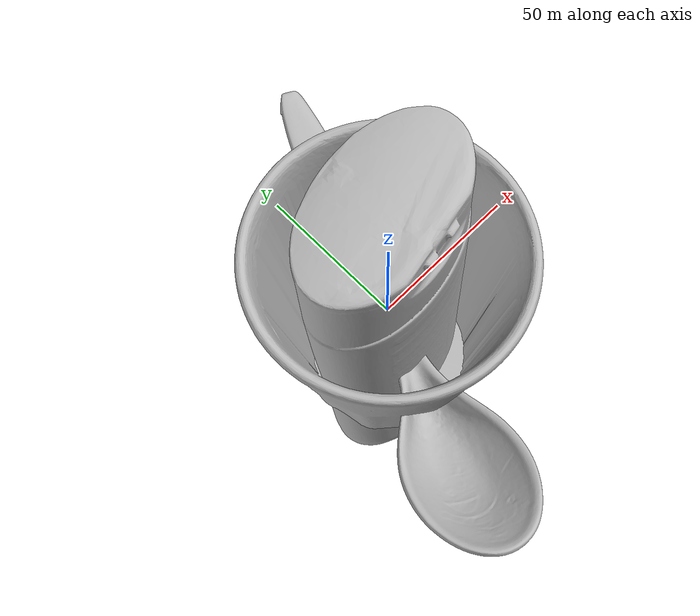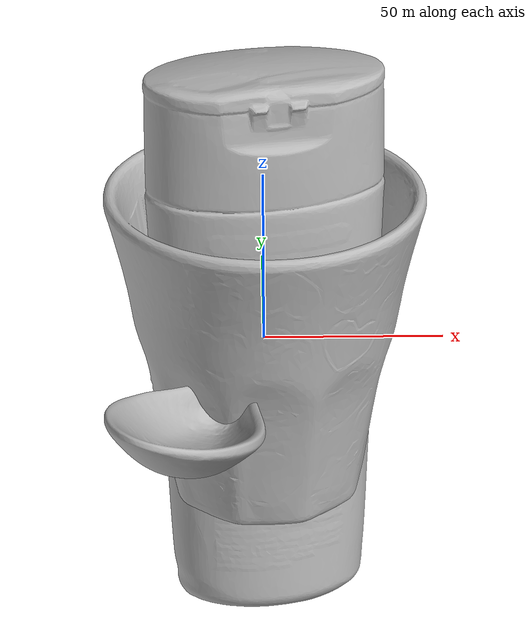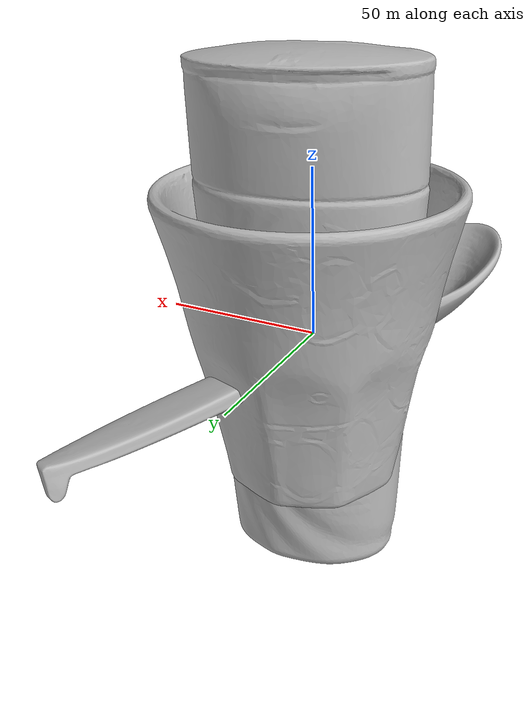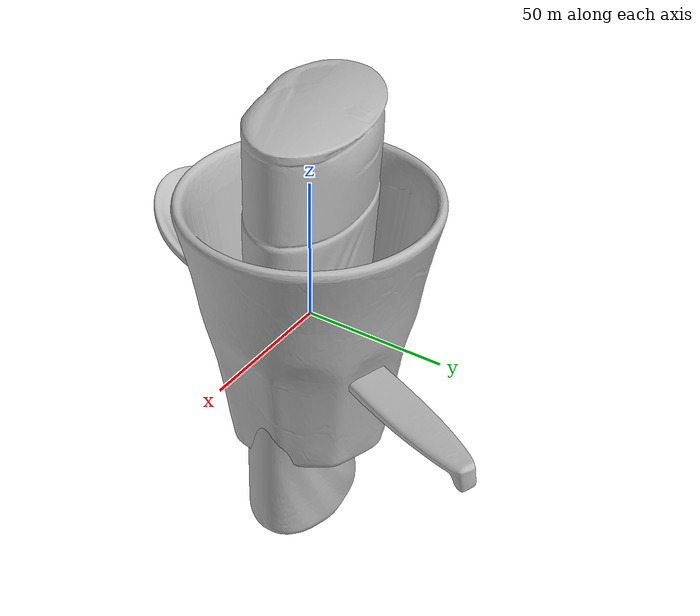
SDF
<sdf version="1.4">
 <world name="default">
  <light name="light1" type="point">
   <pose>0 0 1 0 0 0</pose>
   <diffuse>3 3 3 1</diffuse>
   <specular>3 3 3 1</specular>
  </light>
  <light name="light2" type="point">
   <pose>0 0.5 2 0 0 0</pose>
   <diffuse>1 1 1 1</diffuse>
   <specular>1 1 1 1</specular>
  </light>
  <light name="light3" type="point">
   <pose>0 0.5 2 0 0 0</pose>
   <diffuse>3 3 3 1</diffuse>
   <specular>3 3 3 1</specular>
  </light>
  <scene><ambient>0.7 0.7 0.7</ambient></scene>
  <model name="bottle1">
   <link name="link_bottle1">
    <collision name="default">
     <geometry>
      <mesh><uri>model://pure_zhen/collision_meshes/collision.obj</uri><scale>1.0 1.0 1.0</scale></mesh>
     </geometry>
     <surface>
      <friction><ode><mu>0.5</mu><mu2>0.5</mu2></ode></friction>
      <contact><ode><max_vel>0</max_vel><min_depth>0.0001</min_depth><kp>1e8</kp></ode></contact>
     </surface>
    </collision>
    <visual name="default">
     <geometry>
      <mesh><uri>model://pure_zhen/visual_meshes/visual.dae</uri><scale>1.0 1.0 1.0</scale></mesh>
     </geometry>
    </visual>
    <inertial>
     <mass>0.21128538250923157</mass>
     <pose>-8.582300506532192e-05 0.0002452346670906991 -0.0015797390369698405 -0.027642443229877835 0.005619248866174896 0.3057200614584077</pose>
     <inertia>
      <ixx>0.00063332287</ixx>
      <iyy>0.00063348823</iyy>
      <izz>6.6904315e-05</izz>
      <ixy>0</ixy>
      <ixz>0</ixz>
      <iyz>0</iyz>
     </inertia>
    </inertial>
   </link>
   <pose>-0.007435171864926815 0.3154444694519043 0.09194851666688919 0.019485872634265662 -0.0160920949345852 -0.2668384420885264</pose>
  </model>
  <model name="bottle2">
   <link name="link_bottle2">
    <collision name="default">
     <geometry>
      <mesh><uri>model://conditioner/collision_meshes/collision.obj</uri><scale>1.0 1.0 1.0</scale></mesh>
     </geometry>
     <surface>
      <friction><ode><mu>0.5</mu><mu2>0.5</mu2></ode></friction>
      <contact><ode><max_vel>0</max_vel><min_depth>0.0001</min_depth><kp>1e8</kp></ode></contact>
     </surface>
    </collision>
    <visual name="default">
     <geometry>
      <mesh><uri>model://conditioner/visual_meshes/visual.dae</uri><scale>1.0 1.0 1.0</scale></mesh>
     </geometry>
    </visual>
    <inertial>
     <mass>0.3611464500427246</mass>
     <pose>-0.00055994390277192 -0.0001729748910292983 0.004359682556241751 -0.005038374424784669 0.01530604350153207 0.015072341368129788</pose>
     <inertia>
      <ixx>0.00078562286</ixx>
      <iyy>0.0008415716</iyy>
      <izz>0.00012113213</izz>
      <ixy>0</ixy>
      <ixz>0</ixz>
      <iyz>0</iyz>
     </inertia>
    </inertial>
   </link>
   <pose>0.2334071546792984 -0.37139490246772766 0.08122976869344711 0.03689254845516967 -0.01566038629201916 -2.962295590574658</pose>
  </model>
  <model name="silverware1">
   <link name="link_silverware1">
    <collision name="default">
     <geometry>
      <mesh><uri>model://doraemon_spoon/collision_meshes/collision.obj</uri><scale>1.0 1.0 1.0</scale></mesh>
     </geometry>
     <surface>
      <friction><ode><mu>0.5</mu><mu2>0.5</mu2></ode></friction>
      <contact><ode><max_vel>0</max_vel><min_depth>0.0001</min_depth><kp>1e8</kp></ode></contact>
     </surface>
    </collision>
    <visual name="default">
     <geometry>
      <mesh><uri>model://doraemon_spoon/visual_meshes/visual.dae</uri><scale>1.0 1.0 1.0</scale></mesh>
     </geometry>
    </visual>
    <inertial>
     <mass>0.02099660225212574</mass>
     <pose>-0.02216508239507675 -0.0006374581134878099 -0.003332545980811119 -0.009147162014623967 0.07380421234862718 -0.01412382746948542</pose>
     <inertia>
      <ixx>1.6446534e-06</ixx>
      <iyy>4.671061e-05</iyy>
      <izz>4.7504738e-05</izz>
      <ixy>0</ixy>
      <ixz>0</ixz>
      <iyz>0</iyz>
     </inertia>
    </inertial>
   </link>
   <pose>-0.05729779601097107 0.130418062210083 0.01492999866604805 0.09457800102580735 -0.003979674452848292 1.2032711545468557</pose>
  </model>
  <model name="stationery1">
   <link name="link_stationery1">
    <collision name="default">
     <geometry>
      <mesh><uri>model://correction_fuid/collision_meshes/collision.obj</uri><scale>1.0 1.0 1.0</scale></mesh>
     </geometry>
     <surface>
      <friction><ode><mu>0.5</mu><mu2>0.5</mu2></ode></friction>
      <contact><ode><max_vel>0</max_vel><min_depth>0.0001</min_depth><kp>1e8</kp></ode></contact>
     </surface>
    </collision>
    <visual name="default">
     <geometry>
      <mesh><uri>model://correction_fuid/visual_meshes/visual.dae</uri><scale>1.0 1.0 1.0</scale></mesh>
     </geometry>
    </visual>
    <inertial>
     <mass>0.046645622700452805</mass>
     <pose>-0.00012557735317386687 -0.0009722909890115261 -0.001618212671019137 -0.010846607840907904 0.019488357502694276 -0.015992455488392</pose>
     <inertia>
      <ixx>4.5177083e-05</ixx>
      <iyy>2.7341744e-06</iyy>
      <izz>4.635291e-05</izz>
      <ixy>0</ixy>
      <ixz>0</ixz>
      <iyz>0</iyz>
     </inertia>
    </inertial>
   </link>
   <pose>0.08680401742458344 -0.3868192434310913 0.009632830508053303 -0.0017271491355869229 -0.05616729161621206 1.578343009400672</pose>
  </model>
  <model name="bowl1">
   <link name="link_bowl1">
    <collision name="default">
     <geometry>
      <mesh><uri>model://doraemon_bowl/collision_meshes/collision.obj</uri><scale>1.0 1.0 1.0</scale></mesh>
     </geometry>
     <surface>
      <friction><ode><mu>0.5</mu><mu2>0.5</mu2></ode></friction>
      <contact><ode><max_vel>0</max_vel><min_depth>0.0001</min_depth><kp>1e8</kp></ode></contact>
     </surface>
    </collision>
    <visual name="default">
     <geometry>
      <mesh><uri>model://doraemon_bowl/visual_meshes/visual.dae</uri><scale>1.0 1.0 1.0</scale></mesh>
     </geometry>
    </visual>
    <inertial>
     <mass>0.11811670660972595</mass>
     <pose>-0.014629551209509373 0.0004857121384702623 -0.0020864885300397873 -0.00509396228069995 -0.10568398533611668 -0.02642645986873745</pose>
     <inertia>
      <ixx>0.00016378764</ixx>
      <iyy>0.00021554313</iyy>
      <izz>0.00031711452</izz>
      <ixy>0</ixy>
      <ixz>0</ixz>
      <iyz>0</iyz>
     </inertia>
    </inertial>
   </link>
   <pose>0.14221906661987305 -0.02000611461699009 0.025906192138791084 0.008592717746024053 0.0062696445669698075 -1.0302566430820475</pose>
  </model>
  <model name="cup1">
   <link name="link_cup1">
    <collision name="default">
     <geometry>
      <mesh><uri>model://hello_kitty_cup/collision_meshes/collision.obj</uri><scale>1.0 1.0 1.0</scale></mesh>
     </geometry>
     <surface>
      <friction><ode><mu>0.5</mu><mu2>0.5</mu2></ode></friction>
      <contact><ode><max_vel>0</max_vel><min_depth>0.0001</min_depth><kp>1e8</kp></ode></contact>
     </surface>
    </collision>
    <visual name="default">
     <geometry>
      <mesh><uri>model://hello_kitty_cup/visual_meshes/visual.dae</uri><scale>1.0 1.0 1.0</scale></mesh>
     </geometry>
    </visual>
    <inertial>
     <mass>0.06522195786237717</mass>
     <pose>0.00027251147548668087 0.0002795039035845548 0.003044978016987443 0.05779148941225366 0.007964866585370347 -0.020452001862605422</pose>
     <inertia>
      <ixx>8.981858e-05</ixx>
      <iyy>9.081978e-05</iyy>
      <izz>7.573251e-05</izz>
      <ixy>0</ixy>
      <ixz>0</ixz>
      <iyz>0</iyz>
     </inertia>
    </inertial>
   </link>
   <pose>0.21863308548927307 -0.2801554501056671 0.04621630162000656 -0.005879996875595708 0.01079724810186151 0.47745900479246384</pose>
  </model>
  <model name="plate1">
   <link name="link_plate1">
    <collision name="default">
     <geometry>
      <mesh><uri>model://hello_kitty_plate/collision_meshes/collision.obj</uri><scale>1.0 1.0 1.0</scale></mesh>
     </geometry>
     <surface>
      <friction><ode><mu>0.5</mu><mu2>0.5</mu2></ode></friction>
      <contact><ode><max_vel>0</max_vel><min_depth>0.0001</min_depth><kp>1e8</kp></ode></contact>
     </surface>
    </collision>
    <visual name="default">
     <geometry>
      <mesh><uri>model://hello_kitty_plate/visual_meshes/visual.dae</uri><scale>1.0 1.0 1.0</scale></mesh>
     </geometry>
    </visual>
    <inertial>
     <mass>0.08260300010442734</mass>
     <pose>0.0073142931796610355 0.0002893725468311459 -0.0027947169728577137 -0.00010432002488368626 -0.007054440417891238 -0.014449022362072891</pose>
     <inertia>
      <ixx>0.0001592833</ixx>
      <iyy>0.00030061565</iyy>
      <izz>0.0004564546</izz>
      <ixy>0</ixy>
      <ixz>0</ixz>
      <iyz>0</iyz>
     </inertia>
    </inertial>
   </link>
   <pose>0.005333559587597847 0.1429888904094696 0.015607375651597977 -0.03193869062183001 0.08198505820959602 -0.4220879242705469</pose>
  </model>
  <model name="box4">
   <link name="link_box4">
    <collision name="default">
     <geometry>
      <mesh><uri>model://wooden_puzzle1/collision_meshes/collision.obj</uri><scale>1.0 1.0 1.0</scale></mesh>
     </geometry>
     <surface>
      <friction><ode><mu>0.5</mu><mu2>0.5</mu2></ode></friction>
      <contact><ode><max_vel>0</max_vel><min_depth>0.0001</min_depth><kp>1e8</kp></ode></contact>
     </surface>
    </collision>
    <visual name="default">
     <geometry>
      <mesh><uri>model://wooden_puzzle1/visual_meshes/visual.dae</uri><scale>1.0 1.0 1.0</scale></mesh>
     </geometry>
    </visual>
    <inertial>
     <mass>0.034562814980745316</mass>
     <pose>-0.0001735068071866408 7.97226166469045e-05 -9.191555000143126e-05 -0.07784459827727222 -0.2636103773563706 -0.5528705263726328</pose>
     <inertia>
      <ixx>6.5210584e-06</ixx>
      <iyy>6.395525e-06</iyy>
      <izz>6.471823e-06</izz>
      <ixy>0</ixy>
      <ixz>0</ixz>
      <iyz>0</iyz>
     </inertia>
    </inertial>
   </link>
   <pose>-0.03555034473538399 0.2607397139072418 0.016802027821540833 0.010511972045122218 -0.009453665164632757 1.1128409714010201</pose>
  </model>
  <physics type="ode">
   <max_contacts>50</max_contacts>
   <ode>
    <solver><type>quick</type><iters>75</iters></solver>
    <constraints>
     <contact_max_correcting_vel>0</contact_max_correcting_vel>
     <contact_surface_layer>0</contact_surface_layer>
    </constraints>
   </ode>
  </physics>
 </world>
</sdf>
